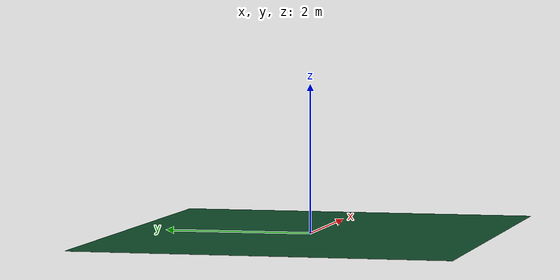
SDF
<?xml version='1.0'?>
<sdf version='1.6'>
  <model name='green_area_small_6X5'>
    <link name='link'>
      <inertial>
        <mass>1</mass>
        <inertia>
          <ixx>0.166667</ixx>
          <ixy>0</ixy>
          <ixz>0</ixz>
          <iyy>0.166667</iyy>
          <iyz>0</iyz>
          <izz>0.166667</izz>
        </inertia>
        <pose frame=''>0 0 0 0 -0 0</pose>
      </inertial>
      <self_collide>0</self_collide>
      <enable_wind>0</enable_wind>
      <kinematic>0</kinematic>
      <pose frame=''>0 0 0 0 -0 0</pose>
      <gravity>1</gravity>
      <visual name='visual'>
        <geometry>
          <box>
            <size>6 5 0.000729</size>
          </box>
        </geometry>
        <material>
          <script>
            <name>Gazebo/Grey</name>
            <uri>file://media/materials/scripts/gazebo.material</uri>
          </script>
          <ambient>0.078 0.353 0.196 0</ambient>
          <shader type='vertex'>
            <normal_map>__default__</normal_map>
          </shader>
          <diffuse>0.078 0.353 0.196 1</diffuse>
          <specular>0.078 0.353 0.196 1</specular>
          <emissive>0.078 0.353 0.196 1</emissive>
        </material>
        <pose frame=''>0 0 0.01 0 -0 0</pose>
        <transparency>0</transparency>
        <cast_shadows>1</cast_shadows>
      </visual>
      <collision name='collision'>
        <laser_retro>0</laser_retro>
        <max_contacts>10</max_contacts>
        <pose frame=''>0 0 0 0 -0 0</pose>
        <geometry>
          <box>
            <size>4.86428 4.57331 0.000729</size>
          </box>
        </geometry>
        <surface>
          <friction>
            <ode>
              <mu>1</mu>
              <mu2>1</mu2>
              <fdir1>0 0 0</fdir1>
              <slip1>0</slip1>
              <slip2>0</slip2>
            </ode>
            <torsional>
              <coefficient>1</coefficient>
              <patch_radius>0</patch_radius>
              <surface_radius>0</surface_radius>
              <use_patch_radius>1</use_patch_radius>
              <ode>
                <slip>0</slip>
              </ode>
            </torsional>
          </friction>
          <bounce>
            <restitution_coefficient>0</restitution_coefficient>
            <threshold>1e+06</threshold>
          </bounce>
          <contact>
            <collide_without_contact>0</collide_without_contact>
            <collide_without_contact_bitmask>1</collide_without_contact_bitmask>
            <collide_bitmask>1</collide_bitmask>
            <ode>
              <soft_cfm>0</soft_cfm>
              <soft_erp>0.2</soft_erp>
              <kp>1e+13</kp>
              <kd>1</kd>
              <max_vel>0.01</max_vel>
              <min_depth>0</min_depth>
            </ode>
            <bullet>
              <split_impulse>1</split_impulse>
              <split_impulse_penetration_threshold>-0.01</split_impulse_penetration_threshold>
              <soft_cfm>0</soft_cfm>
              <soft_erp>0.2</soft_erp>
              <kp>1e+13</kp>
              <kd>1</kd>
            </bullet>
          </contact>
        </surface>
      </collision>
    </link>
    <static>0</static>
    <allow_auto_disable>1</allow_auto_disable>
  </model>
</sdf>
